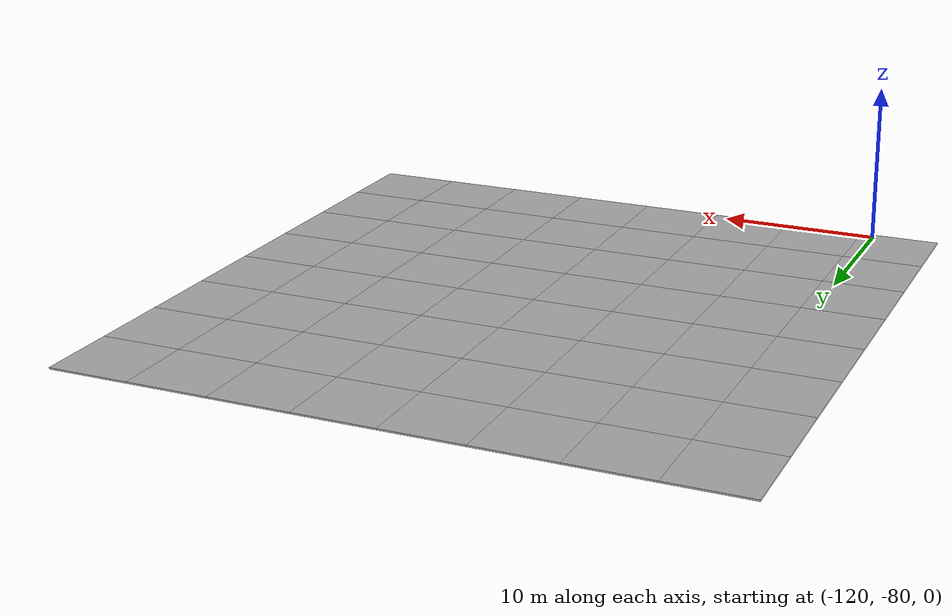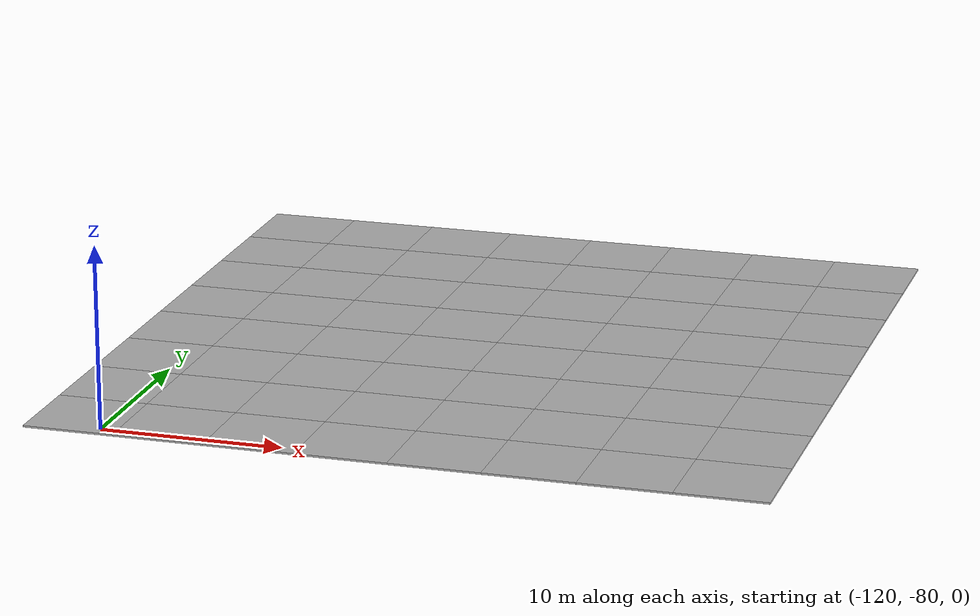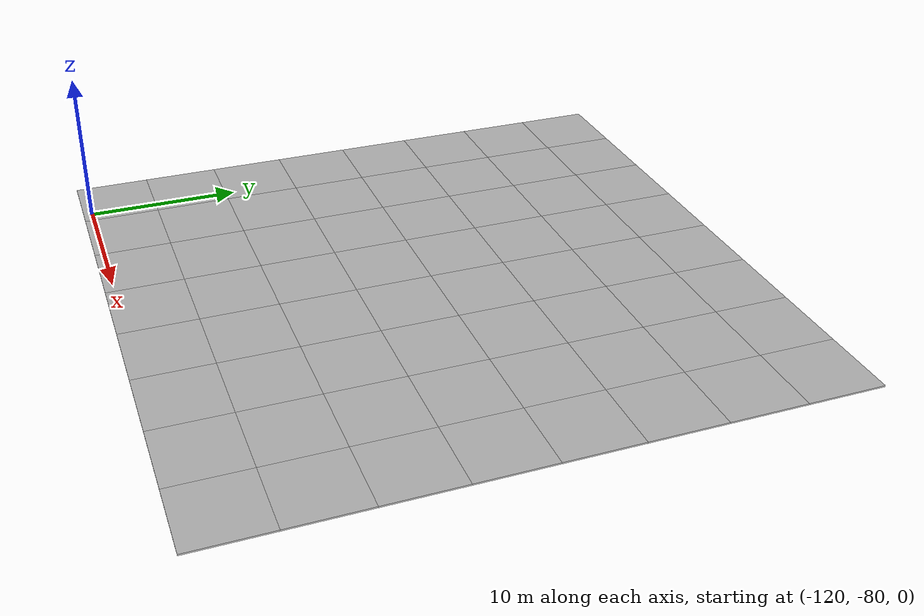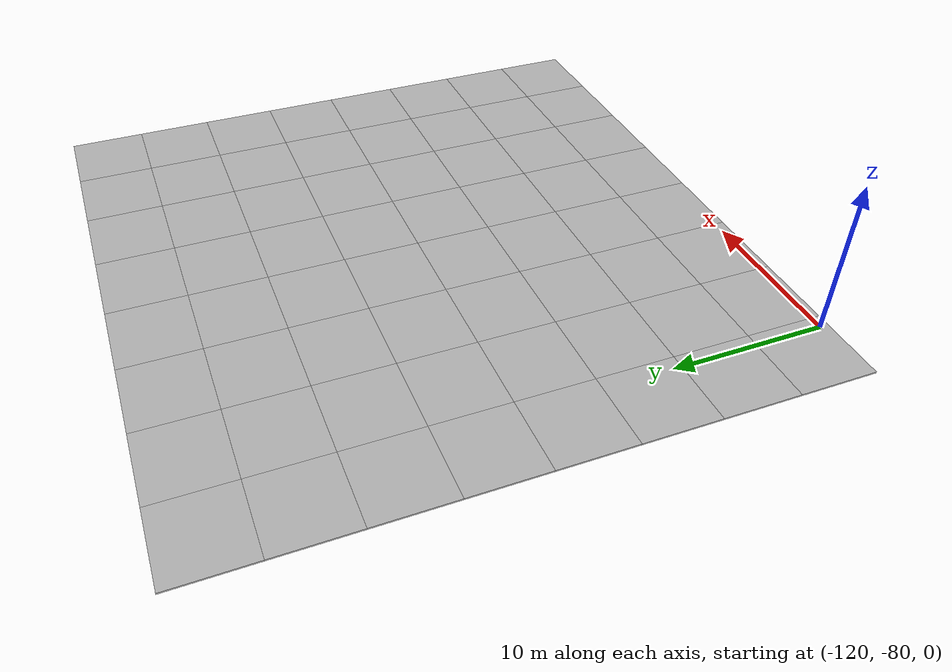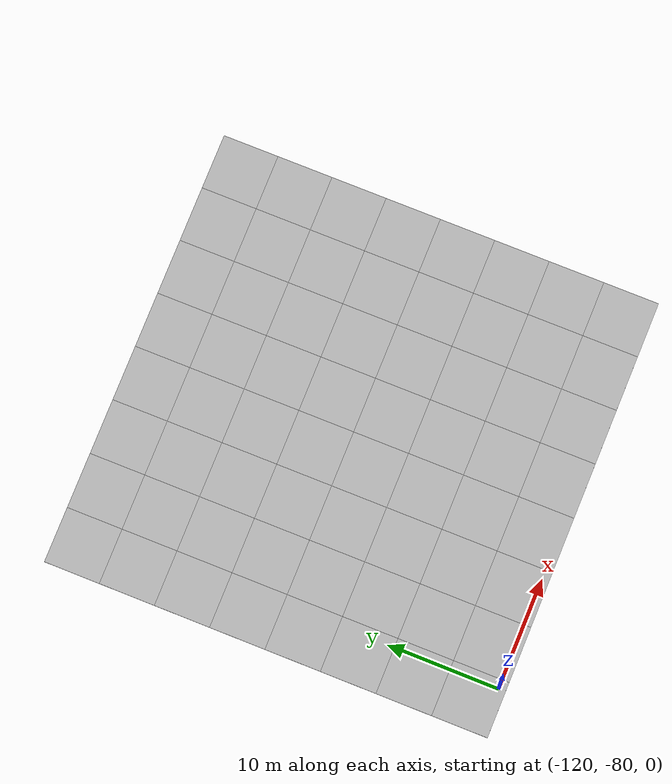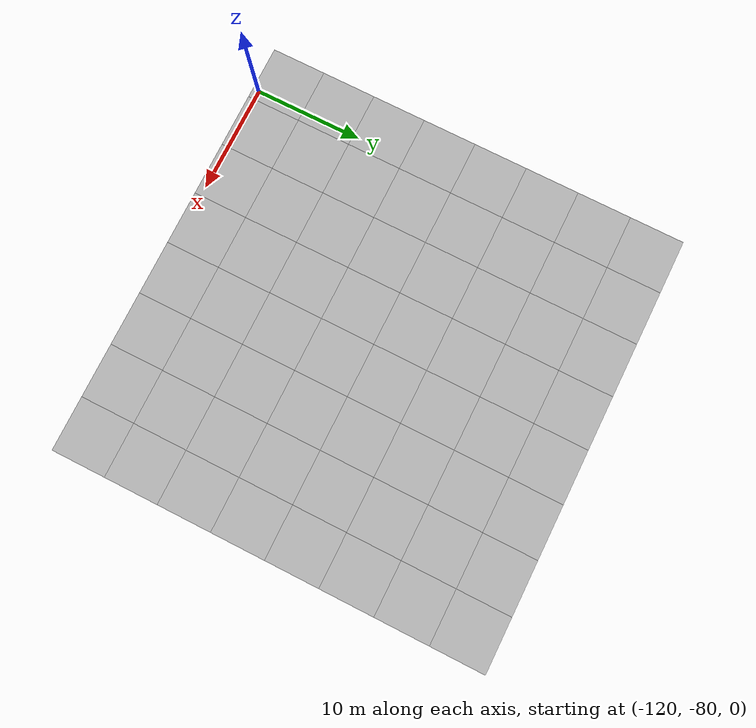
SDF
<sdf version="1.7">
 <world name="default">
  <model name="mud_plane_80x80_4">
   <model name="mud_plane_40x40_0">
    <model name="mud_plane_20x20">
     <model name="mud_plane">
      <static>1</static>
      <link name="link">
       <collision name="collision"><geometry><box><size>10 10 0.1</size></box></geometry></collision>
       <visual name="visual_1">
        <pose>-2.5 2.5 -0.05 0 -0 0</pose>
        <cast_shadows>0</cast_shadows>
        <geometry><box><size>5 5 0.1</size></box></geometry>
        <material>
         <script>
          <uri>model://mud_plane/materials/scripts</uri>
          <uri>model://mud_plane/materials/textures</uri>
          <name>vrc/mud</name>
         </script>
        </material>
       </visual>
       <visual name="visual_2">
        <pose>2.5 2.5 -0.05 0 -0 0</pose>
        <cast_shadows>0</cast_shadows>
        <geometry><box><size>5 5 0.1</size></box></geometry>
        <material>
         <script>
          <uri>model://mud_plane/materials/scripts</uri>
          <uri>model://mud_plane/materials/textures</uri>
          <name>vrc/mud</name>
         </script>
        </material>
       </visual>
       <visual name="visual_3">
        <pose>2.5 -2.5 -0.05 0 -0 0</pose>
        <cast_shadows>0</cast_shadows>
        <geometry><box><size>5 5 0.1</size></box></geometry>
        <material>
         <script>
          <uri>model://mud_plane/materials/scripts</uri>
          <uri>model://mud_plane/materials/textures</uri>
          <name>vrc/mud</name>
         </script>
        </material>
       </visual>
       <visual name="visual_4">
        <pose>-2.5 -2.5 -0.05 0 -0 0</pose>
        <cast_shadows>0</cast_shadows>
        <geometry><box><size>5 5 0.1</size></box></geometry>
        <material>
         <script>
          <uri>model://mud_plane/materials/scripts</uri>
          <uri>model://mud_plane/materials/textures</uri>
          <name>vrc/mud</name>
         </script>
        </material>
       </visual>
      </link>
      <pose>-4.99986 -4.99991 0 0 -0 0</pose>
     </model>
     <model name="mud_plane_0">
      <static>1</static>
      <link name="link">
       <collision name="collision"><geometry><box><size>10 10 0.1</size></box></geometry></collision>
       <visual name="visual_1">
        <pose>-2.5 2.5 -0.05 0 -0 0</pose>
        <cast_shadows>0</cast_shadows>
        <geometry><box><size>5 5 0.1</size></box></geometry>
        <material>
         <script>
          <uri>model://mud_plane/materials/scripts</uri>
          <uri>model://mud_plane/materials/textures</uri>
          <name>vrc/mud</name>
         </script>
        </material>
       </visual>
       <visual name="visual_2">
        <pose>2.5 2.5 -0.05 0 -0 0</pose>
        <cast_shadows>0</cast_shadows>
        <geometry><box><size>5 5 0.1</size></box></geometry>
        <material>
         <script>
          <uri>model://mud_plane/materials/scripts</uri>
          <uri>model://mud_plane/materials/textures</uri>
          <name>vrc/mud</name>
         </script>
        </material>
       </visual>
       <visual name="visual_3">
        <pose>2.5 -2.5 -0.05 0 -0 0</pose>
        <cast_shadows>0</cast_shadows>
        <geometry><box><size>5 5 0.1</size></box></geometry>
        <material>
         <script>
          <uri>model://mud_plane/materials/scripts</uri>
          <uri>model://mud_plane/materials/textures</uri>
          <name>vrc/mud</name>
         </script>
        </material>
       </visual>
       <visual name="visual_4">
        <pose>-2.5 -2.5 -0.05 0 -0 0</pose>
        <cast_shadows>0</cast_shadows>
        <geometry><box><size>5 5 0.1</size></box></geometry>
        <material>
         <script>
          <uri>model://mud_plane/materials/scripts</uri>
          <uri>model://mud_plane/materials/textures</uri>
          <name>vrc/mud</name>
         </script>
        </material>
       </visual>
      </link>
      <pose>-4.99946 4.99954 0 0 -0 0</pose>
     </model>
     <model name="mud_plane_1">
      <static>1</static>
      <link name="link">
       <collision name="collision"><geometry><box><size>10 10 0.1</size></box></geometry></collision>
       <visual name="visual_1">
        <pose>-2.5 2.5 -0.05 0 -0 0</pose>
        <cast_shadows>0</cast_shadows>
        <geometry><box><size>5 5 0.1</size></box></geometry>
        <material>
         <script>
          <uri>model://mud_plane/materials/scripts</uri>
          <uri>model://mud_plane/materials/textures</uri>
          <name>vrc/mud</name>
         </script>
        </material>
       </visual>
       <visual name="visual_2">
        <pose>2.5 2.5 -0.05 0 -0 0</pose>
        <cast_shadows>0</cast_shadows>
        <geometry><box><size>5 5 0.1</size></box></geometry>
        <material>
         <script>
          <uri>model://mud_plane/materials/scripts</uri>
          <uri>model://mud_plane/materials/textures</uri>
          <name>vrc/mud</name>
         </script>
        </material>
       </visual>
       <visual name="visual_3">
        <pose>2.5 -2.5 -0.05 0 -0 0</pose>
        <cast_shadows>0</cast_shadows>
        <geometry><box><size>5 5 0.1</size></box></geometry>
        <material>
         <script>
          <uri>model://mud_plane/materials/scripts</uri>
          <uri>model://mud_plane/materials/textures</uri>
          <name>vrc/mud</name>
         </script>
        </material>
       </visual>
       <visual name="visual_4">
        <pose>-2.5 -2.5 -0.05 0 -0 0</pose>
        <cast_shadows>0</cast_shadows>
        <geometry><box><size>5 5 0.1</size></box></geometry>
        <material>
         <script>
          <uri>model://mud_plane/materials/scripts</uri>
          <uri>model://mud_plane/materials/textures</uri>
          <name>vrc/mud</name>
         </script>
        </material>
       </visual>
      </link>
      <pose>4.99964 -4.99949 0 0 -0 0</pose>
     </model>
     <model name="mud_plane_2">
      <static>1</static>
      <link name="link">
       <collision name="collision"><geometry><box><size>10 10 0.1</size></box></geometry></collision>
       <visual name="visual_1">
        <pose>-2.5 2.5 -0.05 0 -0 0</pose>
        <cast_shadows>0</cast_shadows>
        <geometry><box><size>5 5 0.1</size></box></geometry>
        <material>
         <script>
          <uri>model://mud_plane/materials/scripts</uri>
          <uri>model://mud_plane/materials/textures</uri>
          <name>vrc/mud</name>
         </script>
        </material>
       </visual>
       <visual name="visual_2">
        <pose>2.5 2.5 -0.05 0 -0 0</pose>
        <cast_shadows>0</cast_shadows>
        <geometry><box><size>5 5 0.1</size></box></geometry>
        <material>
         <script>
          <uri>model://mud_plane/materials/scripts</uri>
          <uri>model://mud_plane/materials/textures</uri>
          <name>vrc/mud</name>
         </script>
        </material>
       </visual>
       <visual name="visual_3">
        <pose>2.5 -2.5 -0.05 0 -0 0</pose>
        <cast_shadows>0</cast_shadows>
        <geometry><box><size>5 5 0.1</size></box></geometry>
        <material>
         <script>
          <uri>model://mud_plane/materials/scripts</uri>
          <uri>model://mud_plane/materials/textures</uri>
          <name>vrc/mud</name>
         </script>
        </material>
       </visual>
       <visual name="visual_4">
        <pose>-2.5 -2.5 -0.05 0 -0 0</pose>
        <cast_shadows>0</cast_shadows>
        <geometry><box><size>5 5 0.1</size></box></geometry>
        <material>
         <script>
          <uri>model://mud_plane/materials/scripts</uri>
          <uri>model://mud_plane/materials/textures</uri>
          <name>vrc/mud</name>
         </script>
        </material>
       </visual>
      </link>
      <pose>4.99967 4.99986 0 0 -0 0</pose>
     </model>
     <static>0</static>
     <pose>-9.99895 9.99843 0 0 -0 0</pose>
    </model>
    <model name="mud_plane_20x20_0">
     <model name="mud_plane">
      <static>1</static>
      <link name="link">
       <collision name="collision"><geometry><box><size>10 10 0.1</size></box></geometry></collision>
       <visual name="visual_1">
        <pose>-2.5 2.5 -0.05 0 -0 0</pose>
        <cast_shadows>0</cast_shadows>
        <geometry><box><size>5 5 0.1</size></box></geometry>
        <material>
         <script>
          <uri>model://mud_plane/materials/scripts</uri>
          <uri>model://mud_plane/materials/textures</uri>
          <name>vrc/mud</name>
         </script>
        </material>
       </visual>
       <visual name="visual_2">
        <pose>2.5 2.5 -0.05 0 -0 0</pose>
        <cast_shadows>0</cast_shadows>
        <geometry><box><size>5 5 0.1</size></box></geometry>
        <material>
         <script>
          <uri>model://mud_plane/materials/scripts</uri>
          <uri>model://mud_plane/materials/textures</uri>
          <name>vrc/mud</name>
         </script>
        </material>
       </visual>
       <visual name="visual_3">
        <pose>2.5 -2.5 -0.05 0 -0 0</pose>
        <cast_shadows>0</cast_shadows>
        <geometry><box><size>5 5 0.1</size></box></geometry>
        <material>
         <script>
          <uri>model://mud_plane/materials/scripts</uri>
          <uri>model://mud_plane/materials/textures</uri>
          <name>vrc/mud</name>
         </script>
        </material>
       </visual>
       <visual name="visual_4">
        <pose>-2.5 -2.5 -0.05 0 -0 0</pose>
        <cast_shadows>0</cast_shadows>
        <geometry><box><size>5 5 0.1</size></box></geometry>
        <material>
         <script>
          <uri>model://mud_plane/materials/scripts</uri>
          <uri>model://mud_plane/materials/textures</uri>
          <name>vrc/mud</name>
         </script>
        </material>
       </visual>
      </link>
      <pose>-4.99986 -4.99991 0 0 -0 0</pose>
     </model>
     <model name="mud_plane_0">
      <static>1</static>
      <link name="link">
       <collision name="collision"><geometry><box><size>10 10 0.1</size></box></geometry></collision>
       <visual name="visual_1">
        <pose>-2.5 2.5 -0.05 0 -0 0</pose>
        <cast_shadows>0</cast_shadows>
        <geometry><box><size>5 5 0.1</size></box></geometry>
        <material>
         <script>
          <uri>model://mud_plane/materials/scripts</uri>
          <uri>model://mud_plane/materials/textures</uri>
          <name>vrc/mud</name>
         </script>
        </material>
       </visual>
       <visual name="visual_2">
        <pose>2.5 2.5 -0.05 0 -0 0</pose>
        <cast_shadows>0</cast_shadows>
        <geometry><box><size>5 5 0.1</size></box></geometry>
        <material>
         <script>
          <uri>model://mud_plane/materials/scripts</uri>
          <uri>model://mud_plane/materials/textures</uri>
          <name>vrc/mud</name>
         </script>
        </material>
       </visual>
       <visual name="visual_3">
        <pose>2.5 -2.5 -0.05 0 -0 0</pose>
        <cast_shadows>0</cast_shadows>
        <geometry><box><size>5 5 0.1</size></box></geometry>
        <material>
         <script>
          <uri>model://mud_plane/materials/scripts</uri>
          <uri>model://mud_plane/materials/textures</uri>
          <name>vrc/mud</name>
         </script>
        </material>
       </visual>
       <visual name="visual_4">
        <pose>-2.5 -2.5 -0.05 0 -0 0</pose>
        <cast_shadows>0</cast_shadows>
        <geometry><box><size>5 5 0.1</size></box></geometry>
        <material>
         <script>
          <uri>model://mud_plane/materials/scripts</uri>
          <uri>model://mud_plane/materials/textures</uri>
          <name>vrc/mud</name>
         </script>
        </material>
       </visual>
      </link>
      <pose>-4.99946 4.99954 0 0 -0 0</pose>
     </model>
     <model name="mud_plane_1">
      <static>1</static>
      <link name="link">
       <collision name="collision"><geometry><box><size>10 10 0.1</size></box></geometry></collision>
       <visual name="visual_1">
        <pose>-2.5 2.5 -0.05 0 -0 0</pose>
        <cast_shadows>0</cast_shadows>
        <geometry><box><size>5 5 0.1</size></box></geometry>
        <material>
         <script>
          <uri>model://mud_plane/materials/scripts</uri>
          <uri>model://mud_plane/materials/textures</uri>
          <name>vrc/mud</name>
         </script>
        </material>
       </visual>
       <visual name="visual_2">
        <pose>2.5 2.5 -0.05 0 -0 0</pose>
        <cast_shadows>0</cast_shadows>
        <geometry><box><size>5 5 0.1</size></box></geometry>
        <material>
         <script>
          <uri>model://mud_plane/materials/scripts</uri>
          <uri>model://mud_plane/materials/textures</uri>
          <name>vrc/mud</name>
         </script>
        </material>
       </visual>
       <visual name="visual_3">
        <pose>2.5 -2.5 -0.05 0 -0 0</pose>
        <cast_shadows>0</cast_shadows>
        <geometry><box><size>5 5 0.1</size></box></geometry>
        <material>
         <script>
          <uri>model://mud_plane/materials/scripts</uri>
          <uri>model://mud_plane/materials/textures</uri>
          <name>vrc/mud</name>
         </script>
        </material>
       </visual>
       <visual name="visual_4">
        <pose>-2.5 -2.5 -0.05 0 -0 0</pose>
        <cast_shadows>0</cast_shadows>
        <geometry><box><size>5 5 0.1</size></box></geometry>
        <material>
         <script>
          <uri>model://mud_plane/materials/scripts</uri>
          <uri>model://mud_plane/materials/textures</uri>
          <name>vrc/mud</name>
         </script>
        </material>
       </visual>
      </link>
      <pose>4.99964 -4.99949 0 0 -0 0</pose>
     </model>
     <model name="mud_plane_2">
      <static>1</static>
      <link name="link">
       <collision name="collision"><geometry><box><size>10 10 0.1</size></box></geometry></collision>
       <visual name="visual_1">
        <pose>-2.5 2.5 -0.05 0 -0 0</pose>
        <cast_shadows>0</cast_shadows>
        <geometry><box><size>5 5 0.1</size></box></geometry>
        <material>
         <script>
          <uri>model://mud_plane/materials/scripts</uri>
          <uri>model://mud_plane/materials/textures</uri>
          <name>vrc/mud</name>
         </script>
        </material>
       </visual>
       <visual name="visual_2">
        <pose>2.5 2.5 -0.05 0 -0 0</pose>
        <cast_shadows>0</cast_shadows>
        <geometry><box><size>5 5 0.1</size></box></geometry>
        <material>
         <script>
          <uri>model://mud_plane/materials/scripts</uri>
          <uri>model://mud_plane/materials/textures</uri>
          <name>vrc/mud</name>
         </script>
        </material>
       </visual>
       <visual name="visual_3">
        <pose>2.5 -2.5 -0.05 0 -0 0</pose>
        <cast_shadows>0</cast_shadows>
        <geometry><box><size>5 5 0.1</size></box></geometry>
        <material>
         <script>
          <uri>model://mud_plane/materials/scripts</uri>
          <uri>model://mud_plane/materials/textures</uri>
          <name>vrc/mud</name>
         </script>
        </material>
       </visual>
       <visual name="visual_4">
        <pose>-2.5 -2.5 -0.05 0 -0 0</pose>
        <cast_shadows>0</cast_shadows>
        <geometry><box><size>5 5 0.1</size></box></geometry>
        <material>
         <script>
          <uri>model://mud_plane/materials/scripts</uri>
          <uri>model://mud_plane/materials/textures</uri>
          <name>vrc/mud</name>
         </script>
        </material>
       </visual>
      </link>
      <pose>4.99967 4.99986 0 0 -0 0</pose>
     </model>
     <static>0</static>
     <pose>9.99933 9.9997 0 0 -0 0</pose>
    </model>
    <model name="mud_plane_20x20_1">
     <model name="mud_plane">
      <static>1</static>
      <link name="link">
       <collision name="collision"><geometry><box><size>10 10 0.1</size></box></geometry></collision>
       <visual name="visual_1">
        <pose>-2.5 2.5 -0.05 0 -0 0</pose>
        <cast_shadows>0</cast_shadows>
        <geometry><box><size>5 5 0.1</size></box></geometry>
        <material>
         <script>
          <uri>model://mud_plane/materials/scripts</uri>
          <uri>model://mud_plane/materials/textures</uri>
          <name>vrc/mud</name>
         </script>
        </material>
       </visual>
       <visual name="visual_2">
        <pose>2.5 2.5 -0.05 0 -0 0</pose>
        <cast_shadows>0</cast_shadows>
        <geometry><box><size>5 5 0.1</size></box></geometry>
        <material>
         <script>
          <uri>model://mud_plane/materials/scripts</uri>
          <uri>model://mud_plane/materials/textures</uri>
          <name>vrc/mud</name>
         </script>
        </material>
       </visual>
       <visual name="visual_3">
        <pose>2.5 -2.5 -0.05 0 -0 0</pose>
        <cast_shadows>0</cast_shadows>
        <geometry><box><size>5 5 0.1</size></box></geometry>
        <material>
         <script>
          <uri>model://mud_plane/materials/scripts</uri>
          <uri>model://mud_plane/materials/textures</uri>
          <name>vrc/mud</name>
         </script>
        </material>
       </visual>
       <visual name="visual_4">
        <pose>-2.5 -2.5 -0.05 0 -0 0</pose>
        <cast_shadows>0</cast_shadows>
        <geometry><box><size>5 5 0.1</size></box></geometry>
        <material>
         <script>
          <uri>model://mud_plane/materials/scripts</uri>
          <uri>model://mud_plane/materials/textures</uri>
          <name>vrc/mud</name>
         </script>
        </material>
       </visual>
      </link>
      <pose>-4.99986 -4.99991 0 0 -0 0</pose>
     </model>
     <model name="mud_plane_0">
      <static>1</static>
      <link name="link">
       <collision name="collision"><geometry><box><size>10 10 0.1</size></box></geometry></collision>
       <visual name="visual_1">
        <pose>-2.5 2.5 -0.05 0 -0 0</pose>
        <cast_shadows>0</cast_shadows>
        <geometry><box><size>5 5 0.1</size></box></geometry>
        <material>
         <script>
          <uri>model://mud_plane/materials/scripts</uri>
          <uri>model://mud_plane/materials/textures</uri>
          <name>vrc/mud</name>
         </script>
        </material>
       </visual>
       <visual name="visual_2">
        <pose>2.5 2.5 -0.05 0 -0 0</pose>
        <cast_shadows>0</cast_shadows>
        <geometry><box><size>5 5 0.1</size></box></geometry>
        <material>
         <script>
          <uri>model://mud_plane/materials/scripts</uri>
          <uri>model://mud_plane/materials/textures</uri>
          <name>vrc/mud</name>
         </script>
        </material>
       </visual>
       <visual name="visual_3">
        <pose>2.5 -2.5 -0.05 0 -0 0</pose>
        <cast_shadows>0</cast_shadows>
        <geometry><box><size>5 5 0.1</size></box></geometry>
        <material>
         <script>
          <uri>model://mud_plane/materials/scripts</uri>
          <uri>model://mud_plane/materials/textures</uri>
          <name>vrc/mud</name>
         </script>
        </material>
       </visual>
       <visual name="visual_4">
        <pose>-2.5 -2.5 -0.05 0 -0 0</pose>
        <cast_shadows>0</cast_shadows>
        <geometry><box><size>5 5 0.1</size></box></geometry>
        <material>
         <script>
          <uri>model://mud_plane/materials/scripts</uri>
          <uri>model://mud_plane/materials/textures</uri>
          <name>vrc/mud</name>
         </script>
        </material>
       </visual>
      </link>
      <pose>-4.99946 4.99954 0 0 -0 0</pose>
     </model>
     <model name="mud_plane_1">
      <static>1</static>
      <link name="link">
       <collision name="collision"><geometry><box><size>10 10 0.1</size></box></geometry></collision>
       <visual name="visual_1">
        <pose>-2.5 2.5 -0.05 0 -0 0</pose>
        <cast_shadows>0</cast_shadows>
        <geometry><box><size>5 5 0.1</size></box></geometry>
        <material>
         <script>
          <uri>model://mud_plane/materials/scripts</uri>
          <uri>model://mud_plane/materials/textures</uri>
          <name>vrc/mud</name>
         </script>
        </material>
       </visual>
       <visual name="visual_2">
        <pose>2.5 2.5 -0.05 0 -0 0</pose>
        <cast_shadows>0</cast_shadows>
        <geometry><box><size>5 5 0.1</size></box></geometry>
        <material>
         <script>
          <uri>model://mud_plane/materials/scripts</uri>
          <uri>model://mud_plane/materials/textures</uri>
          <name>vrc/mud</name>
         </script>
        </material>
       </visual>
       <visual name="visual_3">
        <pose>2.5 -2.5 -0.05 0 -0 0</pose>
        <cast_shadows>0</cast_shadows>
        <geometry><box><size>5 5 0.1</size></box></geometry>
        <material>
         <script>
          <uri>model://mud_plane/materials/scripts</uri>
          <uri>model://mud_plane/materials/textures</uri>
          <name>vrc/mud</name>
         </script>
        </material>
       </visual>
       <visual name="visual_4">
        <pose>-2.5 -2.5 -0.05 0 -0 0</pose>
        <cast_shadows>0</cast_shadows>
        <geometry><box><size>5 5 0.1</size></box></geometry>
        <material>
         <script>
          <uri>model://mud_plane/materials/scripts</uri>
          <uri>model://mud_plane/materials/textures</uri>
          <name>vrc/mud</name>
         </script>
        </material>
       </visual>
      </link>
      <pose>4.99964 -4.99949 0 0 -0 0</pose>
     </model>
     <model name="mud_plane_2">
      <static>1</static>
      <link name="link">
       <collision name="collision"><geometry><box><size>10 10 0.1</size></box></geometry></collision>
       <visual name="visual_1">
        <pose>-2.5 2.5 -0.05 0 -0 0</pose>
        <cast_shadows>0</cast_shadows>
        <geometry><box><size>5 5 0.1</size></box></geometry>
        <material>
         <script>
          <uri>model://mud_plane/materials/scripts</uri>
          <uri>model://mud_plane/materials/textures</uri>
          <name>vrc/mud</name>
         </script>
        </material>
       </visual>
       <visual name="visual_2">
        <pose>2.5 2.5 -0.05 0 -0 0</pose>
        <cast_shadows>0</cast_shadows>
        <geometry><box><size>5 5 0.1</size></box></geometry>
        <material>
         <script>
          <uri>model://mud_plane/materials/scripts</uri>
          <uri>model://mud_plane/materials/textures</uri>
          <name>vrc/mud</name>
         </script>
        </material>
       </visual>
       <visual name="visual_3">
        <pose>2.5 -2.5 -0.05 0 -0 0</pose>
        <cast_shadows>0</cast_shadows>
        <geometry><box><size>5 5 0.1</size></box></geometry>
        <material>
         <script>
          <uri>model://mud_plane/materials/scripts</uri>
          <uri>model://mud_plane/materials/textures</uri>
          <name>vrc/mud</name>
         </script>
        </material>
       </visual>
       <visual name="visual_4">
        <pose>-2.5 -2.5 -0.05 0 -0 0</pose>
        <cast_shadows>0</cast_shadows>
        <geometry><box><size>5 5 0.1</size></box></geometry>
        <material>
         <script>
          <uri>model://mud_plane/materials/scripts</uri>
          <uri>model://mud_plane/materials/textures</uri>
          <name>vrc/mud</name>
         </script>
        </material>
       </visual>
      </link>
      <pose>4.99967 4.99986 0 0 -0 0</pose>
     </model>
     <static>0</static>
     <pose>9.9993 -9.99877 0 0 -0 0</pose>
    </model>
    <model name="mud_plane_20x20_2">
     <model name="mud_plane">
      <static>1</static>
      <link name="link">
       <collision name="collision"><geometry><box><size>10 10 0.1</size></box></geometry></collision>
       <visual name="visual_1">
        <pose>-2.5 2.5 -0.05 0 -0 0</pose>
        <cast_shadows>0</cast_shadows>
        <geometry><box><size>5 5 0.1</size></box></geometry>
        <material>
         <script>
          <uri>model://mud_plane/materials/scripts</uri>
          <uri>model://mud_plane/materials/textures</uri>
          <name>vrc/mud</name>
         </script>
        </material>
       </visual>
       <visual name="visual_2">
        <pose>2.5 2.5 -0.05 0 -0 0</pose>
        <cast_shadows>0</cast_shadows>
        <geometry><box><size>5 5 0.1</size></box></geometry>
        <material>
         <script>
          <uri>model://mud_plane/materials/scripts</uri>
          <uri>model://mud_plane/materials/textures</uri>
          <name>vrc/mud</name>
         </script>
        </material>
       </visual>
       <visual name="visual_3">
        <pose>2.5 -2.5 -0.05 0 -0 0</pose>
        <cast_shadows>0</cast_shadows>
        <geometry><box><size>5 5 0.1</size></box></geometry>
        <material>
         <script>
          <uri>model://mud_plane/materials/scripts</uri>
          <uri>model://mud_plane/materials/textures</uri>
          <name>vrc/mud</name>
         </script>
        </material>
       </visual>
       <visual name="visual_4">
        <pose>-2.5 -2.5 -0.05 0 -0 0</pose>
        <cast_shadows>0</cast_shadows>
        <geometry><box><size>5 5 0.1</size></box></geometry>
        <material>
         <script>
          <uri>model://mud_plane/materials/scripts</uri>
          <uri>model://mud_plane/materials/textures</uri>
          <name>vrc/mud</name>
         </script>
        </material>
       </visual>
      </link>
      <pose>-4.99986 -4.99991 0 0 -0 0</pose>
     </model>
     <model name="mud_plane_0">
      <static>1</static>
      <link name="link">
       <collision name="collision"><geometry><box><size>10 10 0.1</size></box></geometry></collision>
       <visual name="visual_1">
        <pose>-2.5 2.5 -0.05 0 -0 0</pose>
        <cast_shadows>0</cast_shadows>
        <geometry><box><size>5 5 0.1</size></box></geometry>
        <material>
         <script>
          <uri>model://mud_plane/materials/scripts</uri>
          <uri>model://mud_plane/materials/textures</uri>
          <name>vrc/mud</name>
         </script>
        </material>
       </visual>
       <visual name="visual_2">
        <pose>2.5 2.5 -0.05 0 -0 0</pose>
        <cast_shadows>0</cast_shadows>
        <geometry><box><size>5 5 0.1</size></box></geometry>
        <material>
         <script>
          <uri>model://mud_plane/materials/scripts</uri>
          <uri>model://mud_plane/materials/textures</uri>
          <name>vrc/mud</name>
         </script>
        </material>
       </visual>
       <visual name="visual_3">
        <pose>2.5 -2.5 -0.05 0 -0 0</pose>
        <cast_shadows>0</cast_shadows>
        <geometry><box><size>5 5 0.1</size></box></geometry>
        <material>
         <script>
          <uri>model://mud_plane/materials/scripts</uri>
          <uri>model://mud_plane/materials/textures</uri>
          <name>vrc/mud</name>
         </script>
        </material>
       </visual>
       <visual name="visual_4">
        <pose>-2.5 -2.5 -0.05 0 -0 0</pose>
        <cast_shadows>0</cast_shadows>
        <geometry><box><size>5 5 0.1</size></box></geometry>
        <material>
         <script>
          <uri>model://mud_plane/materials/scripts</uri>
          <uri>model://mud_plane/materials/textures</uri>
          <name>vrc/mud</name>
         </script>
        </material>
       </visual>
      </link>
      <pose>-4.99946 4.99954 0 0 -0 0</pose>
     </model>
     <model name="mud_plane_1">
      <static>1</static>
      <link name="link">
       <collision name="collision"><geometry><box><size>10 10 0.1</size></box></geometry></collision>
       <visual name="visual_1">
        <pose>-2.5 2.5 -0.05 0 -0 0</pose>
        <cast_shadows>0</cast_shadows>
        <geometry><box><size>5 5 0.1</size></box></geometry>
        <material>
         <script>
          <uri>model://mud_plane/materials/scripts</uri>
          <uri>model://mud_plane/materials/textures</uri>
          <name>vrc/mud</name>
         </script>
        </material>
       </visual>
       <visual name="visual_2">
        <pose>2.5 2.5 -0.05 0 -0 0</pose>
        <cast_shadows>0</cast_shadows>
        <geometry><box><size>5 5 0.1</size></box></geometry>
        <material>
         <script>
          <uri>model://mud_plane/materials/scripts</uri>
          <uri>model://mud_plane/materials/textures</uri>
          <name>vrc/mud</name>
         </script>
        </material>
       </visual>
       <visual name="visual_3">
        <pose>2.5 -2.5 -0.05 0 -0 0</pose>
        <cast_shadows>0</cast_shadows>
        <geometry><box><size>5 5 0.1</size></box></geometry>
        <material>
         <script>
          <uri>model://mud_plane/materials/scripts</uri>
          <uri>model://mud_plane/materials/textures</uri>
          <name>vrc/mud</name>
         </script>
        </material>
       </visual>
       <visual name="visual_4">
        <pose>-2.5 -2.5 -0.05 0 -0 0</pose>
        <cast_shadows>0</cast_shadows>
        <geometry><box><size>5 5 0.1</size></box></geometry>
        <material>
         <script>
          <uri>model://mud_plane/materials/scripts</uri>
          <uri>model://mud_plane/materials/textures</uri>
          <name>vrc/mud</name>
         </script>
        </material>
       </visual>
      </link>
      <pose>4.99964 -4.99949 0 0 -0 0</pose>
     </model>
     <model name="mud_plane_2">
      <static>1</static>
      <link name="link">
       <collision name="collision"><geometry><box><size>10 10 0.1</size></box></geometry></collision>
       <visual name="visual_1">
        <pose>-2.5 2.5 -0.05 0 -0 0</pose>
        <cast_shadows>0</cast_shadows>
        <geometry><box><size>5 5 0.1</size></box></geometry>
        <material>
         <script>
          <uri>model://mud_plane/materials/scripts</uri>
          <uri>model://mud_plane/materials/textures</uri>
          <name>vrc/mud</name>
         </script>
        </material>
       </visual>
       <visual name="visual_2">
        <pose>2.5 2.5 -0.05 0 -0 0</pose>
        <cast_shadows>0</cast_shadows>
        <geometry><box><size>5 5 0.1</size></box></geometry>
        <material>
         <script>
          <uri>model://mud_plane/materials/scripts</uri>
          <uri>model://mud_plane/materials/textures</uri>
          <name>vrc/mud</name>
         </script>
        </material>
       </visual>
       <visual name="visual_3">
        <pose>2.5 -2.5 -0.05 0 -0 0</pose>
        <cast_shadows>0</cast_shadows>
        <geometry><box><size>5 5 0.1</size></box></geometry>
        <material>
         <script>
          <uri>model://mud_plane/materials/scripts</uri>
          <uri>model://mud_plane/materials/textures</uri>
          <name>vrc/mud</name>
         </script>
        </material>
       </visual>
       <visual name="visual_4">
        <pose>-2.5 -2.5 -0.05 0 -0 0</pose>
        <cast_shadows>0</cast_shadows>
        <geometry><box><size>5 5 0.1</size></box></geometry>
        <material>
         <script>
          <uri>model://mud_plane/materials/scripts</uri>
          <uri>model://mud_plane/materials/textures</uri>
          <name>vrc/mud</name>
         </script>
        </material>
       </visual>
      </link>
      <pose>4.99967 4.99986 0 0 -0 0</pose>
     </model>
     <static>0</static>
     <pose>-9.99969 -9.99935 0 0 -0 0</pose>
    </model>
    <static>0</static>
    <pose>19.9985 -19.998 0 0 -0 0</pose>
   </model>
   <static>0</static>
   <pose>-124.144 -40.594 0 0 -0 0</pose>
  </model>
 </world>
</sdf>
